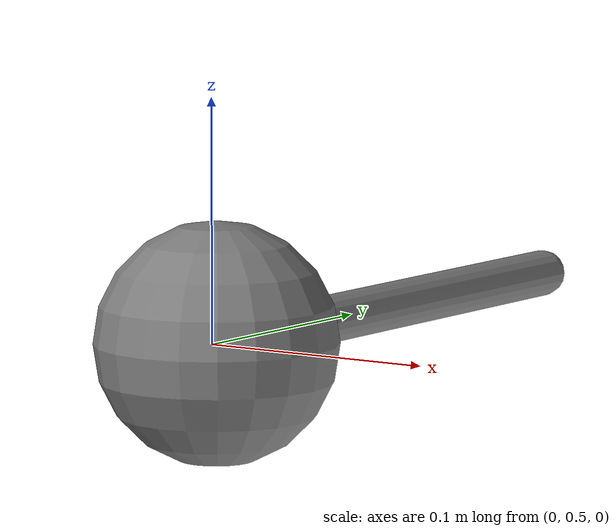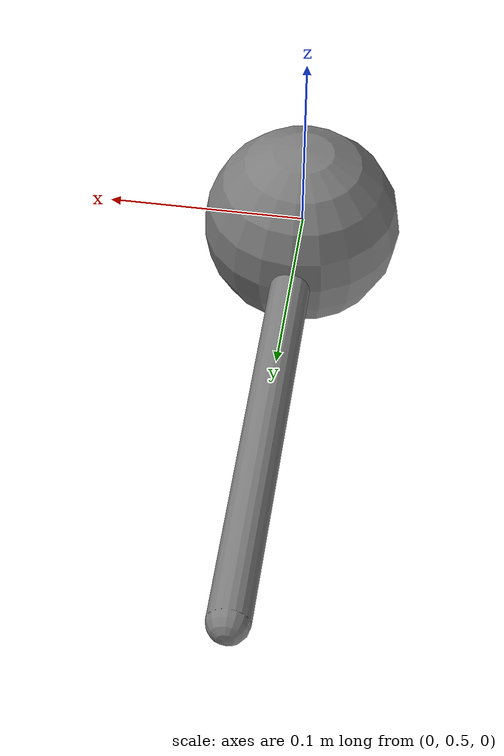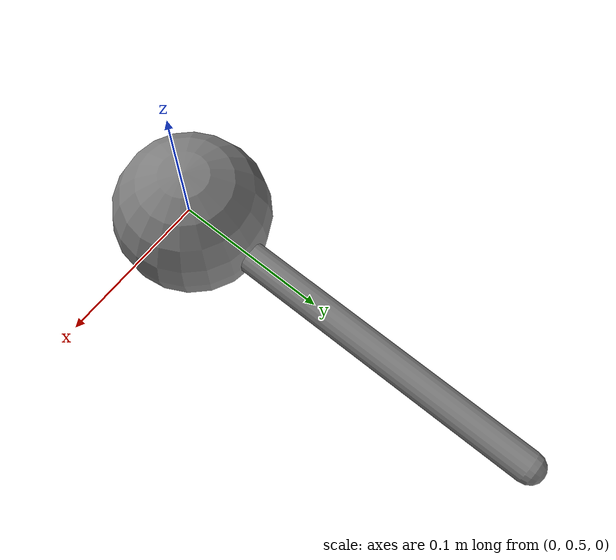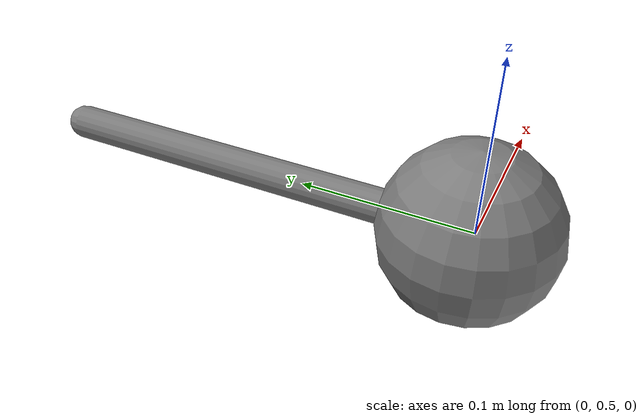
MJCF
<mujoco>
  <option gravity="0 -9.81 0" timestep="0.001"/>

  <worldbody>
    <light diffuse=".5 .5 .5" pos="0 0 -3" dir="0 0 1"/>

    <body name="pendulum" pos="0 1 0">
      <joint name="hinge" type="hinge" axis="0 0 1" damping="0" frictionloss="0"/>
      <body name="rod" pos="0 -0.2485 0">
        <geom type="capsule" size="0.01" fromto="0 0 0 0 -0.2485 0" mass="0" contype="0" conaffinity="0"/>
        <body name="bob" pos="0 -0.2485 0">
          <geom type="sphere" size="0.05" mass="1.0"/>
        </body>
      </body>
    </body>
  </worldbody>

  <keyframe>
    <key qpos="1.5708 0 0" name="horizontal"/>
  </keyframe>

  <equality>
    <contact/>
  </equality>

  <plugin>
    <energy/>
  </plugin>
</mujoco>
